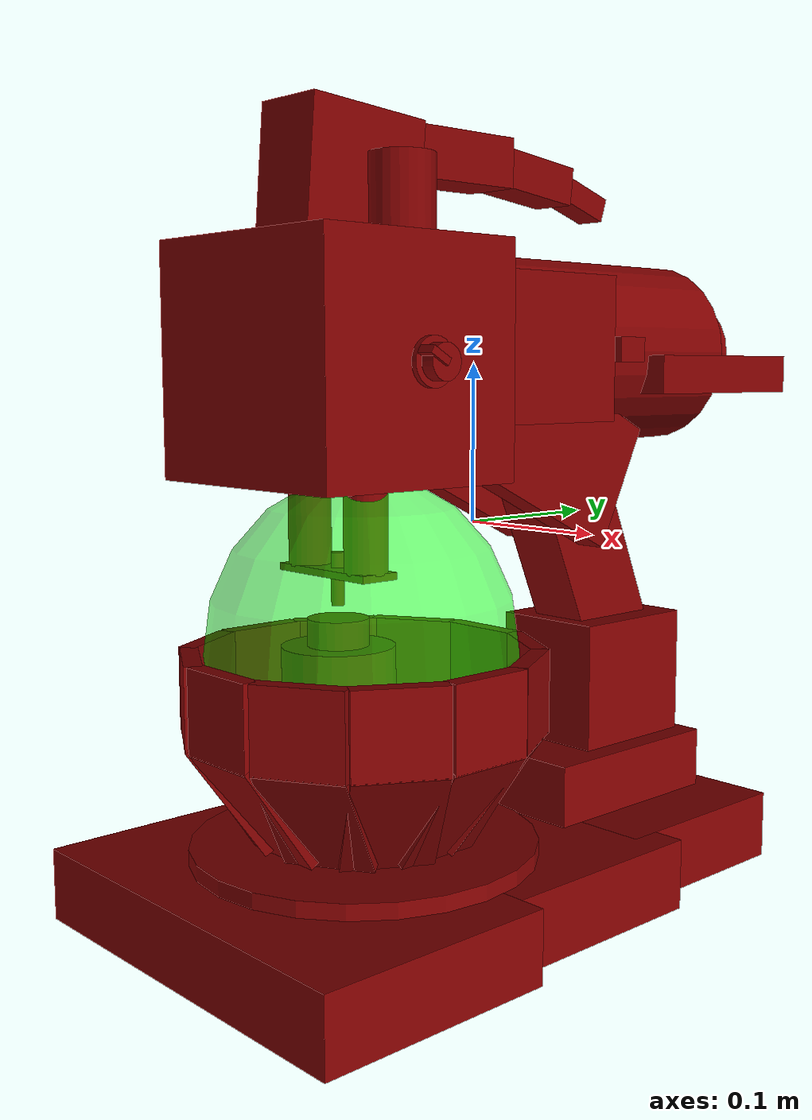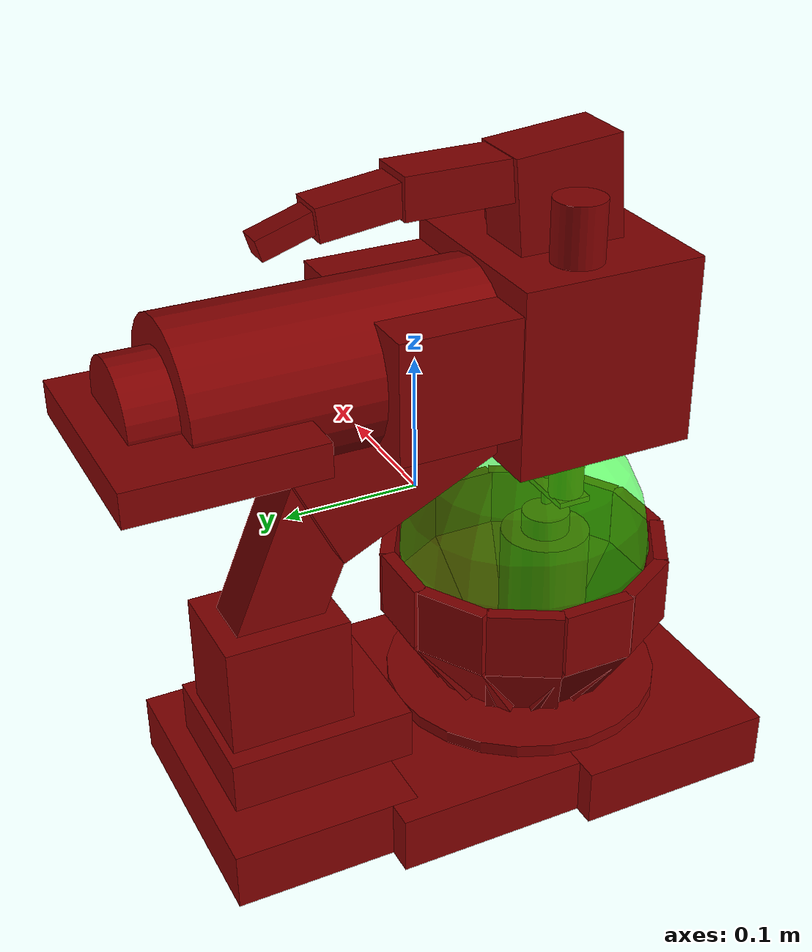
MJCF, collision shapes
<?xml version='1.0' encoding='UTF-8'?>
<mujoco model="model">
  <option timestep="0.002" gravity="0.0 0.0 -9.81"/>
  <compiler angle="radian"/>
  <asset>
    <mesh file="visuals/blender.obj" name="blender_vis"/>
    <mesh file="visuals/bowl.obj" name="bowl_vis"/>
    <mesh file="visuals/button_head_lock.obj" name="button_head_lock_vis"/>
    <mesh file="visuals/head.obj" name="head_vis"/>
    <mesh file="visuals/knob_speed.obj" name="knob_speed_vis"/>
    <mesh file="visuals/Body001.obj" name="Body001_vis"/>
    <texture file="visuals/T_BC001.png" name="Body001_material" type="2d"/>
    <material name="Body001_material" rgba="1 1 1 1.0" texture="Body001_material" shininess="0.5" specular="0.8"/>
    <texture file="visuals/T_BC001.png" name="bowl_material" type="2d"/>
    <material name="bowl_material" rgba="1 1 1 1.0" texture="bowl_material" shininess="1" specular="1"/>
    <texture file="visuals/T_BC001.png" name="head_material" type="2d"/>
    <material name="head_material" rgba="1 1 1 1.0" texture="head_material" shininess="0.5" specular="0.8"/>
    <texture file="visuals/T_BC001.png" name="blender_material" type="2d"/>
    <material name="blender_material" rgba="1 1 1 1.0" texture="blender_material" shininess="1" specular="1"/>
    <texture file="visuals/T_BC001.png" name="button_head_lock_material" type="2d"/>
    <material name="button_head_lock_material" rgba="1 1 1 1.0" texture="button_head_lock_material" shininess="0.5" specular="0.5"/>
    <texture file="visuals/T_BC001.png" name="knob_speed_material" type="2d"/>
    <material name="knob_speed_material" rgba="1 1 1 1.0" texture="knob_speed_material" shininess="0.5" specular="0.5"/>
  </asset>
  <default>
    <default class="visual">
      <geom conaffinity="0" contype="0" group="1" type="mesh"/>
    </default>
    <default class="collision">
      <geom group="0" rgba="0.5 0 0 0.5"/>
    </default>
    <default class="spawn">
      <geom group="0" rgba="1 1 1 0.5" contype="0" conaffinity="0"/>
      <site group="0" rgba="1 1 1 0.5"/>
    </default>
    <default class="region">
      <geom group="1" conaffinity="0" contype="0" rgba="0 1 0 0"/>
    </default>
  </default>
  <worldbody>
    <body>
      <body name="object">
        <geom mesh="Body001_vis" type="mesh" solimp="0.998 0.998 0.001" solref="0.001 1" friction="0.95 0.3 0.1" class="visual" material="Body001_material"/>
        <geom type="box" pos="4.897843278661619e-17 -0.15366870164871216 -0.22057925164699554" size="0.1356559693813324 0.07646315544843674 0.022550884634256363" quat="1.0 0.0 0.0 0.0" class="collision"/>
        <geom type="box" pos="4.897843278661619e-17 -0.008576542139053345 -0.22057925164699554" size="0.1193213015794754 0.07646191120147705 0.022550150752067566" quat="1.0 0.0 0.0 0.0" class="collision"/>
        <geom type="box" pos="4.897843278661619e-17 0.1180645227432251 -0.22057925164699554" size="0.09913986176252365 0.07030613720417023 0.022550884634256363" quat="1.0 0.0 0.0 0.0" class="collision"/>
        <geom type="box" pos="5.055353356542741e-17 0.10056693106889725 -0.18038208782672882" size="0.05379757285118103 0.07030418515205383 0.022550884634256363" quat="1.0 0.0 0.0 0.0" class="collision"/>
        <geom type="box" pos="5.055353356542741e-17 0.11744346469640732 -0.11538463085889816" size="0.03893378749489784 0.04708361625671387 0.042576249688863754" quat="1.0 0.0 0.0 0.0" class="collision"/>
        <geom type="box" pos="6.97932649224882e-17 0.09694836288690567 -0.028736550360918045" size="0.020694512873888016 0.030921725556254387 0.061389487236738205" quat="0.9798327088356018 0.1998196840286255 4.4369015145278743e-17 -2.040742456584048e-23" class="collision"/>
        <geom type="cylinder" pos="-2.527289488796214e-11 -0.09217732399702072 -0.19344469904899597" size="0.1068195328116417 0.005278684198856354" quat="1.0 0.0 0.0 0.0" class="collision"/>
        <body name="bowl">
          <geom mesh="bowl_vis" type="mesh" solimp="0.998 0.998 0.001" solref="0.001 1" friction="0.95 0.3 0.1" class="visual" material="bowl_material"/>
          <geom type="cylinder" pos="3.582163454751708e-10 -0.09217731654644012 -0.18256720900535583" size="0.05979258567094803 0.0018684215610846877" quat="1.0 -8.146034247147327e-08 0.0 0.0" class="collision"/>
          <geom type="box" pos="-0.09004050493240356 -0.04263290762901306 -0.09583552181720734" size="0.005457259248942137 0.02767772041261196 0.025780651718378067" quat="0.9659258127212524 -7.868467122307266e-08 2.1083510048924836e-08 -0.2588191032409668" class="collision"/>
          <geom type="box" pos="-0.07159455865621567 -0.05328269302845001 -0.1499294638633728" size="0.005457259248942137 0.02767772041261196 0.03907692804932594" quat="0.9216431975364685 -0.07746776193380356 -0.289113312959671 -0.24695360660552979" class="collision"/>
          <geom type="box" pos="-0.10274834930896759 -0.09429019689559937 -0.09583552181720734" size="0.005457215942442417 0.027677280828356743 0.025780655443668365" quat="1.0 0.0 0.0 0.0" class="collision"/>
          <geom type="box" pos="-0.08144880831241608 -0.09429019689559937 -0.1499294638633728" size="0.0054572587832808495 0.027677718549966812 0.03907692804932594" quat="0.9541552662849426 -7.772581511744647e-08 -0.29931214451789856 -6.459730883534576e-08" class="collision"/>
          <geom type="box" pos="-0.002116084797307849 0.01057298481464386 -0.09583552181720734" size="0.02767743170261383 0.005457170773297548 0.025780655443668365" quat="1.0 0.0 0.0 0.0" class="collision"/>
          <geom type="box" pos="-0.0021160913165658712 -0.010726572945713997 -0.1499294638633728" size="0.0054572587832808495 0.027677718549966812 0.03907692804932594" quat="0.6746895909309387 -0.2116457223892212 -0.21164558827877045 -0.6746897101402283" class="collision"/>
          <geom type="box" pos="-0.05320652946829796 -0.004250332713127136 -0.09583552181720734" size="0.005457259248942137 0.027677716687321663 0.025780653581023216" quat="0.8660253882408142 -7.054673289985658e-08 4.073017478845031e-08 -0.5" class="collision"/>
          <geom type="box" pos="-0.0425567626953125 -0.022696280851960182 -0.1499294638633728" size="0.005457259248942137 0.027677718549966812 0.03907692804932594" quat="0.826322615146637 -0.14965614676475525 -0.2592118978500366 -0.4770776927471161" class="collision"/>
          <geom type="box" pos="0.08792376518249512 -0.03896884247660637 -0.09583552181720734" size="0.005457259248942137 0.027677718549966812 0.025780651718378067" quat="0.2588190734386444 -2.1083486956285924e-08 7.868464990679058e-08 -0.9659258127212524" class="collision"/>
          <geom type="box" pos="0.06947781145572662 -0.04961860552430153 -0.1499294638633728" size="0.005457259248942137 0.027677716687321663 0.03907692804932594" quat="0.2469535619020462 -0.289113312959671 -0.07746762782335281 -0.9216431975364685" class="collision"/>
          <geom type="box" pos="0.049541182816028595 -0.0021348893642425537 -0.09583552181720734" size="0.005457259248942137 0.027677716687321663 0.025780653581023216" quat="0.4999999701976776 -4.0730171235736634e-08 7.054672579442922e-08 -0.866025447845459" class="collision"/>
          <geom type="box" pos="0.038891419768333435 -0.020580830052495003 -0.1499294638633728" size="0.005457259248942137 0.027677718549966812 0.03907692804932594" quat="0.47707751393318176 -0.2592118978500366 -0.14965596795082092 -0.8263227939605713" class="collision"/>
          <geom type="box" pos="0.0900392159819603 -0.1417165845632553 -0.09583552181720734" size="0.005457259248942137 0.02767772041261196 0.025780651718378067" quat="0.25881919264793396 -2.108350116714064e-08 -7.868464280136322e-08 0.9659258127212524" class="collision"/>
          <geom type="box" pos="0.0715932622551918 -0.13106679916381836 -0.1499294638633728" size="0.005457259248942137 0.027677718549966812 0.03907692804932594" quat="0.2469538152217865 0.28911328315734863 -0.07746781408786774 0.9216431379318237" class="collision"/>
          <geom type="box" pos="0.10274706780910492 -0.0900593176484108 -0.09583552181720734" size="0.0054572345688939095 0.027677414938807487 0.025780655443668365" quat="1.0 0.0 0.0 0.0" class="collision"/>
          <geom type="box" pos="0.0814475268125534 -0.0900593027472496 -0.1499294638633728" size="0.005457259248942137 0.027677718549966812 0.03907692804932594" quat="2.057737304994589e-07 0.2993119955062866 -1.2201191168514924e-07 0.9541553258895874" class="collision"/>
          <geom type="box" pos="0.002114806557074189 -0.19492246210575104 -0.09583552181720734" size="0.027677536010742188 0.005457203835248947 0.025780655443668365" quat="1.0 0.0 0.0 0.0" class="collision"/>
          <geom type="box" pos="0.002114822156727314 -0.17362290620803833 -0.1499294489622116" size="0.005457259248942137 0.027677718549966812 0.03907692804932594" quat="0.6746896505355835 0.21164557337760925 -0.21164566278457642 0.6746896505355835" class="collision"/>
          <geom type="box" pos="0.05320524424314499 -0.18009914457798004 -0.09583552181720734" size="0.005457259714603424 0.027677716687321663 0.025780653581023216" quat="0.5000000596046448 -4.0730171235736634e-08 -7.054671868900186e-08 0.8660253882408142" class="collision"/>
          <geom type="box" pos="0.04255544766783714 -0.16165322065353394 -0.1499294489622116" size="0.005457259248942137 0.027677718549966812 0.03907692804932594" quat="0.4770779311656952 0.25921180844306946 -0.14965617656707764 0.8263225555419922" class="collision"/>
          <geom type="box" pos="-0.08792506158351898 -0.14538060128688812 -0.09583552181720734" size="0.005457259248942137 0.027677718549966812 0.025780651718378067" quat="0.9659258723258972 -7.868464280136322e-08 -2.1083488732642763e-08 0.25881892442703247" class="collision"/>
          <geom type="box" pos="-0.06947913020849228 -0.13473081588745117 -0.1499294489622116" size="0.005457259248942137 0.02767772041261196 0.03907692804932594" quat="0.9216433167457581 0.07746749371290207 -0.289113312959671 0.24695318937301636" class="collision"/>
          <geom type="box" pos="-0.049542542546987534 -0.18221455812454224 -0.09583552181720734" size="0.005457259248942137 0.027677716687321663 0.025780653581023216" quat="0.8660256266593933 -7.054674000528394e-08 -4.073013215588617e-08 0.49999961256980896" class="collision"/>
          <geom type="box" pos="-0.0388927087187767 -0.16376863420009613 -0.1499294489622116" size="0.005457259248942137 0.02767772041261196 0.03907692804932594" quat="0.8263227343559265 0.1496559977531433 -0.2592119872570038 0.47707751393318176" class="collision"/>
          <geom name="reg_bowl" type="ellipsoid" pos="-6.419140845537186e-07 -0.09217473864555359 -0.0721440464258194" size="0.09428507089614868 0.09608176350593567 0.10786672681570053" rgba="0 1 0 0.5" class="region"/>
        </body>
        <body name="head">
          <joint axis="-1.0 0.0 0.0" pos="3.490754142256003e-19 0.0770430639386177 0.001572095905430615" limited="true" name="head_joint" range="0.0 1.0089969389957472" type="hinge" damping="1" frictionloss="1" armature=".01" stiffness="0.05"/>
          <geom mesh="head_vis" type="mesh" solimp="0.998 0.998 0.001" solref="0.001 1" friction="0.95 0.3 0.1" class="visual" material="head_material"/>
          <geom type="box" pos="0.03379953280091286 0.024303270503878593 0.052719295024871826" size="0.010130075737833977 0.07784977555274963 0.0425751693546772" quat="0.9744470715522766 -0.22461730241775513 4.9875056865954267e-17 -8.040185716919941e-25" class="collision"/>
          <geom type="box" pos="3.495029166758042e-18 -0.11069067567586899 0.10132018476724625" size="0.07700555771589279 0.06860920786857605 0.06966609507799149" quat="1.0 0.0 0.0 0.0" class="collision"/>
          <geom type="box" pos="-0.009870403446257114 0.16956499218940735 0.09340831637382507" size="0.0818767100572586 0.06860904395580292 0.012502308934926987" quat="1.0 0.0 0.0 0.0" class="collision"/>
          <geom type="cylinder" pos="8.929079697850284e-11 0.06694287806749344 0.10819568485021591" size="0.05999843031167984 0.11345064640045166" quat="0.7071068286895752 -0.7071067690849304 -1.5700924318127872e-16 5.9269340452702814e-24" class="collision"/>
          <geom type="box" pos="1.7201866038918002e-18 -0.004335409961640835 0.10931336879730225" size="0.07553490996360779 0.05218582972884178 0.044405918568372726" quat="1.0 0.0 0.0 0.0" class="collision"/>
          <geom type="cylinder" pos="5.845690598249575e-11 0.19693967700004578 0.10819568485021591" size="0.03927985951304436 0.017913704738020897" quat="0.7071068286895752 -0.7071067690849304 -1.5700924318127872e-16 5.9269340452702814e-24" class="collision"/>
          <geom type="cylinder" pos="0.04477623477578163 -0.09886237978935242 0.19277697801589966" size="0.01888052560389042 0.022379856556653976" quat="1.0 0.0 0.0 0.0" class="collision"/>
          <geom type="cylinder" pos="-0.0449797622859478 -0.09886237978935242 0.19277697801589966" size="0.01888052560389042 0.022379856556653976" quat="1.0 0.0 0.0 0.0" class="collision"/>
          <geom type="cylinder" pos="-0.028717976063489914 -0.10949694365262985 0.005675252992659807" size="0.013031981885433197 0.02604789286851883" quat="1.0 0.0 0.0 0.0" class="collision"/>
          <geom type="cylinder" pos="-0.002361692488193512 -0.10942798852920532 -0.026062943041324615" size="0.00392498355358839 0.01598968356847763" quat="1.0 0.0 0.0 0.0" class="collision"/>
          <geom type="box" pos="-0.03340189531445503 0.024303270503878593 0.052719295024871826" size="0.010130075737833977 0.07784977555274963 0.0425751693546772" quat="0.9744470715522766 -0.22461730241775513 4.9875056865954267e-17 -8.040185716919941e-25" class="collision"/>
          <geom type="box" pos="4.8458351248279597e-17 0.042638495564460754 0.2182370126247406" size="0.014965485781431198 0.03164741024374962 0.011953622102737427" quat="0.9981939196586609 -0.0600740984082222 -1.333912944728115e-17 -1.2620101112340989e-24" class="collision"/>
          <geom type="box" pos="4.639046258262358e-17 0.09226008504629135 0.2089240700006485" size="0.009812728501856327 0.02075091190636158 0.007837877608835697" quat="0.987870991230011 -0.1552768349647522 -3.447837023886789e-17 -4.8368757912441194e-24" class="collision"/>
          <geom type="box" pos="4.9572748821845737e-17 -0.025054283440113068 0.22325581312179565" size="0.01911025494337082 0.04041232168674469 0.01526417676359415" quat="1.0 0.0 0.0 0.0" class="collision"/>
          <geom type="box" pos="4.494209910854528e-17 -0.10600404441356659 0.20240122079849243" size="0.023966485634446144 0.04041215777397156 0.040237437933683395" quat="0.9991382956504822 -0.041504986584186554 -9.215958348504428e-18 1.0491601548254312e-24" class="collision"/>
          <geom type="cylinder" pos="0.023979265242815018 -0.10949694365262985 0.005675252992659807" size="0.013031981885433197 0.02604789286851883" quat="1.0 0.0 0.0 0.0" class="collision"/>
          <geom type="box" pos="-0.0026100666727870703 -0.10964342951774597 -0.021494004875421524" size="0.03918396681547165 0.012630375102162361 0.0021910681389272213" quat="1.0 0.0 0.0 0.0" class="collision"/>
          <body name="blender">
            <joint axis="0.0 0.0 1.0" pos="-0.002361693885177374 -0.10942798852920532 -0.11058882623910904" limited="false" name="blender_joint" range="0 360" type="hinge" damping="1" frictionloss="1" armature=".01" stiffness="0.05"/>
            <geom mesh="blender_vis" type="mesh" solimp="0.998 0.998 0.001" solref="0.001 1" friction="0.95 0.3 0.1" class="visual" material="blender_material"/>
            <geom type="cylinder" pos="-0.002361692488193512 -0.10942798852920532 -0.10947886109352112" size="0.018469197675585747 0.05998596176505089" quat="1.0 0.0 0.0 0.0" class="collision"/>
            <geom type="cylinder" pos="-0.002361692488193512 -0.10942798852920532 -0.10631057620048523" size="0.034195154905319214 0.04028099402785301" quat="1.0 0.0 0.0 0.0" class="collision"/>
          </body>
          <body name="button_head_lock">
            <joint axis="-1.0 0.0 0.0" pos="0.06505093723535538 0.07470649480819702 0.10930435359477997" limited="true" name="button_head_lock_joint" range="0.0 0.002" type="slide" damping="1" frictionloss="1" armature=".01" stiffness="0.05"/>
            <geom mesh="button_head_lock_vis" type="mesh" solimp="0.998 0.998 0.001" solref="0.001 1" friction="0.95 0.3 0.1" class="visual" material="button_head_lock_material"/>
            <geom class="collision" type="box" pos="0.06518220156431198 0.07470649480819702 0.10925528407096863" size="0.0027336468920111656 0.011490195989608765 0.007924982346594334" quat="1.0 0.0 0.0 0.0" name="button_head_lock_main"/>
          </body>
          <body name="knob_speed">
            <joint axis="-1.0 0.0 0.0" pos="0.08379252254962921 -0.10762324929237366 0.10088136047124863" limited="true" name="knob_speed_joint" range="0.0 4.886921905584122" type="hinge" damping="0.05" armature="0.001"/>
            <geom mesh="knob_speed_vis" type="mesh" solimp="0.998 0.998 0.001" solref="0.001 1" friction="0.95 0.3 0.1" class="visual" material="knob_speed_material"/>
            <geom type="cylinder" pos="0.08600267022848129 -0.10762324929237366 0.10088136047124863" size="0.010440489277243614 0.004455425776541233" quat="0.7071068286895752 -4.750302551315144e-08 0.7071067094802856 4.7503014855010406e-08" class="collision"/>
            <geom type="cylinder" pos="0.07958532124757767 -0.10762324929237366 0.10088136047124863" size="0.014266512356698513 0.0018209816189482808" quat="0.7071068286895752 -4.750302551315144e-08 0.7071067094802856 4.7503014855010406e-08" class="collision"/>
            <geom class="collision" type="box" pos="0.08686752617359161 -0.11356323212385178 0.10415498912334442" size="0.005651605315506458 0.007040993310511112 0.0022990864235907793" quat="0.9659258127212524 -0.2588191032409668 -5.746938552619136e-17 -2.406693728895582e-24" name="knob_speed_main"/>
          </body>
        </body>
        <geom class="region" name="reg_main" type="box" pos="0.0 1.4901161193847656e-08 7.450580596923828e-09" size="0.13944886422157288 0.22777750885486603 0.24083952403068543"/>
      </body>
    </body>
  </worldbody>
  <actuator>
    <motor name="head_joint_actuator" joint="head_joint" gear="10"/>
    <motor name="blender_joint_actuator" joint="blender_joint" gear="10"/>
    <motor name="button_head_lock_joint_actuator" joint="button_head_lock_joint" gear="0.5"/>
    <motor name="knob_speed_joint_actuator" joint="knob_speed_joint" gear="0.5"/>
  </actuator>
</mujoco>
